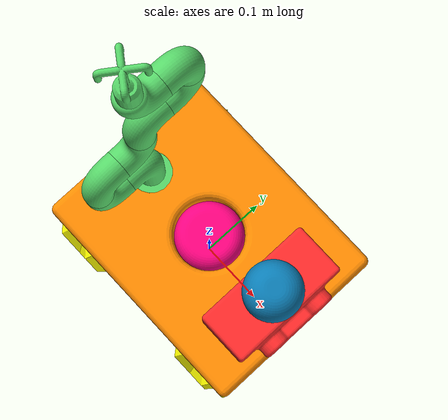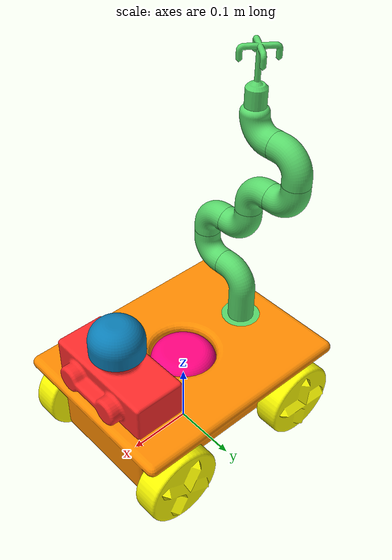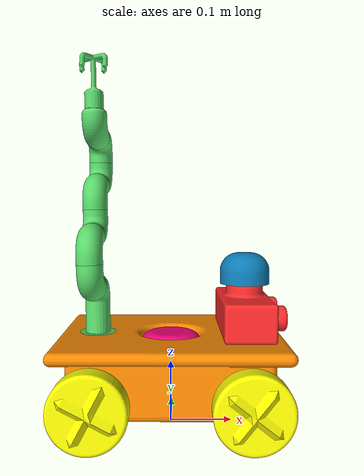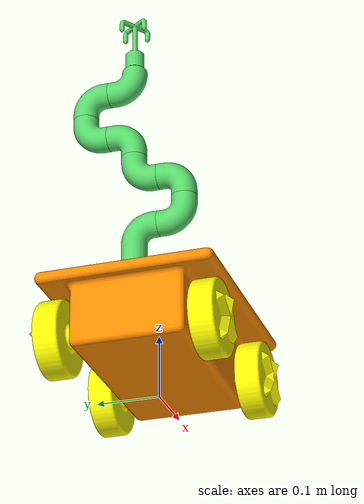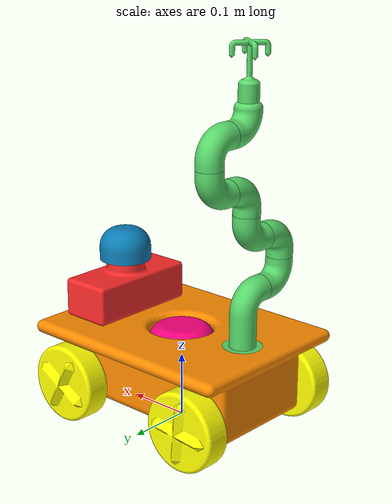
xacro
<?xml version="1.0"?>
<robot xmlns:xacro="http://www.ros.org/wiki/xacro" name="MRobot">
    <xacro:arg name="initial_positions_file" default="initial_positions.yaml" />

    <!-- Import MRobot urdf file -->
    <xacro:include filename="$(find mrobot_description)/urdf/MRobot.urdf" />

    <!-- Import control_xacro -->
    <xacro:include filename="MRobot.ros2_control.xacro" />

    <xacro:MRobot_ros2_control name="FakeSystem" initial_positions_file="$(arg initial_positions_file)"/>

</robot>

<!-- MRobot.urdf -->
<robot
  name="MRobot">
  <link
    name="base_link">
    <inertial>
      <origin
        xyz="-2.7756E-17 2.7756E-17 0.093261"
        rpy="0 0 0" />
      <mass
        value="7.1556" />
      <inertia
        ixx="0.036675"
        ixy="6.4322E-18"
        ixz="-8.9158E-18"
        iyy="0.076383"
        iyz="2.5114E-19"
        izz="0.094459" />
    </inertial>
    <visual>
      <origin
        xyz="0 0 0"
        rpy="0 0 0" />
      <geometry>
        <mesh
          filename="package://mrobot_description/meshes/base_link.STL" />
      </geometry>
      <material
        name="">
        <color
          rgba="1 0.54902 0 1" />
      </material>
    </visual>
    <collision>
      <origin
        xyz="0 0 0"
        rpy="0 0 0" />
      <geometry>
        <mesh
          filename="package://mrobot_description/meshes/base_link.STL" />
      </geometry>
    </collision>
  </link>
  <link
    name="LFW_Link">
    <inertial>
      <origin
        xyz="2.3243E-06 -0.020721 -6.7841E-07"
        rpy="0 0 0" />
      <mass
        value="0.48673" />
      <inertia
        ixx="0.00050184"
        ixy="-3.1361E-08"
        ixz="2.2406E-09"
        iyy="0.00081481"
        iyz="9.1535E-09"
        izz="0.00050184" />
    </inertial>
    <visual>
      <origin
        xyz="0 0 0"
        rpy="0 0 0" />
      <geometry>
        <mesh
          filename="package://mrobot_description/meshes/LFW_Link.STL" />
      </geometry>
      <material
        name="">
        <color
          rgba="1 1 0 1" />
      </material>
    </visual>
    <collision>
      <origin
        xyz="0 0 0"
        rpy="0 0 0" />
      <geometry>
        <mesh
          filename="package://mrobot_description/meshes/LFW_Link.STL" />
      </geometry>
    </collision>
  </link>
  <joint
    name="LFW_Joint"
    type="continuous">
    <origin
      xyz="0.12 0.14 0.0599"
      rpy="0 0 0" />
    <parent
      link="base_link" />
    <child
      link="LFW_Link" />
    <axis
      xyz="0 1 0" />
  </joint>
  <link
    name="LBW_Link">
    <inertial>
      <origin
        xyz="1.8572E-06 -0.020721 -1.5535E-06"
        rpy="0 0 0" />
      <mass
        value="0.48673" />
      <inertia
        ixx="0.00050184"
        ixy="-2.5058E-08"
        ixz="4.0997E-09"
        iyy="0.00081481"
        iyz="2.0962E-08"
        izz="0.00050184" />
    </inertial>
    <visual>
      <origin
        xyz="0 0 0"
        rpy="0 0 0" />
      <geometry>
        <mesh
          filename="package://mrobot_description/meshes/LBW_Link.STL" />
      </geometry>
      <material
        name="">
        <color
          rgba="1 1 0 1" />
      </material>
    </visual>
    <collision>
      <origin
        xyz="0 0 0"
        rpy="0 0 0" />
      <geometry>
        <mesh
          filename="package://mrobot_description/meshes/LBW_Link.STL" />
      </geometry>
    </collision>
  </link>
  <joint
    name="LBW_Joint"
    type="continuous">
    <origin
      xyz="-0.12 0.14 0.0599"
      rpy="0 0 0" />
    <parent
      link="base_link" />
    <child
      link="LBW_Link" />
    <axis
      xyz="0 1 0" />
  </joint>
  <link
    name="RFW_Link">
    <inertial>
      <origin
        xyz="-2.4027E-06 0.020721 -2.9925E-07"
        rpy="0 0 0" />
      <mass
        value="0.48673" />
      <inertia
        ixx="0.00050184"
        ixy="-3.2419E-08"
        ixz="-1.0217E-09"
        iyy="0.00081481"
        iyz="-4.0377E-09"
        izz="0.00050185" />
    </inertial>
    <visual>
      <origin
        xyz="0 0 0"
        rpy="0 0 0" />
      <geometry>
        <mesh
          filename="package://mrobot_description/meshes/RFW_Link.STL" />
      </geometry>
      <material
        name="">
        <color
          rgba="1 1 0 1" />
      </material>
    </visual>
    <collision>
      <origin
        xyz="0 0 0"
        rpy="0 0 0" />
      <geometry>
        <mesh
          filename="package://mrobot_description/meshes/RFW_Link.STL" />
      </geometry>
    </collision>
  </link>
  <joint
    name="RFW_Joint"
    type="continuous">
    <origin
      xyz="0.12 -0.14 0.0599"
      rpy="0 0 0" />
    <parent
      link="base_link" />
    <child
      link="RFW_Link" />
    <axis
      xyz="0 1 0" />
  </joint>
  <link
    name="RBW_Link">
    <inertial>
      <origin
        xyz="2.3148E-06 0.020721 7.1032E-07"
        rpy="0 0 0" />
      <mass
        value="0.48673" />
      <inertia
        ixx="0.00050184"
        ixy="3.1232E-08"
        ixz="-2.3363E-09"
        iyy="0.00081481"
        iyz="9.5841E-09"
        izz="0.00050184" />
    </inertial>
    <visual>
      <origin
        xyz="0 0 0"
        rpy="0 0 0" />
      <geometry>
        <mesh
          filename="package://mrobot_description/meshes/RBW_Link.STL" />
      </geometry>
      <material
        name="">
        <color
          rgba="1 1 0 1" />
      </material>
    </visual>
    <collision>
      <origin
        xyz="0 0 0"
        rpy="0 0 0" />
      <geometry>
        <mesh
          filename="package://mrobot_description/meshes/RBW_Link.STL" />
      </geometry>
    </collision>
  </link>
  <joint
    name="RBW_Joint"
    type="continuous">
    <origin
      xyz="-0.12 -0.14 0.0599000145774858"
      rpy="0 0 0" />
    <parent
      link="base_link" />
    <child
      link="RBW_Link" />
    <axis
      xyz="0 1 0" />
  </joint>
  <link
    name="IMU_Link">
    <inertial>
      <origin
        xyz="-2.7756E-17 0 0.025"
        rpy="0 0 0" />
      <mass
        value="0.34358" />
      <inertia
        ixx="0.00025428"
        ixy="5.1726E-22"
        ixz="-6.1904E-21"
        iyy="0.00025428"
        iyz="-1.6674E-37"
        izz="0.00038703" />
    </inertial>
    <visual>
      <origin
        xyz="0 0 0"
        rpy="0 0 0" />
      <geometry>
        <mesh
          filename="package://mrobot_description/meshes/IMU_Link.STL" />
      </geometry>
      <material
        name="">
        <color
          rgba="1 0 0.50196 1" />
      </material>
    </visual>
    <collision>
      <origin
        xyz="0 0 0"
        rpy="0 0 0" />
      <geometry>
        <mesh
          filename="package://mrobot_description/meshes/IMU_Link.STL" />
      </geometry>
    </collision>
  </link>
  <joint
    name="IMU_Joint"
    type="fixed">
    <origin
      xyz="0 0 0.0999"
      rpy="0 0 0" />
    <parent
      link="base_link" />
    <child
      link="IMU_Link" />
    <axis
      xyz="0 0 1" />
  </joint>
  <link
    name="Camera_Link">
    <inertial>
      <origin
        xyz="-0.05702 5.5511E-17 -4.6026E-05"
        rpy="0 0 0" />
      <mass
        value="1.0337" />
      <inertia
        ixx="0.0028575"
        ixy="-6.1857E-20"
        ixz="-1.4178E-07"
        iyy="0.0010679"
        iyz="1.6895E-19"
        izz="0.0030374" />
    </inertial>
    <visual>
      <origin
        xyz="0 0 0"
        rpy="0 0 0" />
      <geometry>
        <mesh
          filename="package://mrobot_description/meshes/Camera_Link.STL" />
      </geometry>
      <material
        name="">
        <color
          rgba="1 0.16863 0.16863 1" />
      </material>
    </visual>
    <collision>
      <origin
        xyz="0 0 0"
        rpy="0 0 0" />
      <geometry>
        <mesh
          filename="package://mrobot_description/meshes/Camera_Link.STL" />
      </geometry>
    </collision>
  </link>
  <joint
    name="Camera_Joint"
    type="fixed">
    <origin
      xyz="0.18 0 0.1799"
      rpy="0 0 0" />
    <parent
      link="base_link" />
    <child
      link="Camera_Link" />
    <axis
      xyz="0 0 0" />
  </joint>
  <link
    name="Laser_Link">
    <inertial>
      <origin
        xyz="0 0 -0.028399"
        rpy="0 0 0" />
      <mass
        value="0.21092" />
      <inertia
        ixx="0.00011218"
        ixy="1.9163E-23"
        ixz="-1.8966E-21"
        iyy="0.00011218"
        iyz="2.7996E-21"
        izz="0.00015264" />
    </inertial>
    <visual>
      <origin
        xyz="0 0 0"
        rpy="0 0 0" />
      <geometry>
        <mesh
          filename="package://mrobot_description/meshes/Laser_Link.STL" />
      </geometry>
      <material
        name="">
        <color
          rgba="0.039216 0.4902 0.7098 1" />
      </material>
    </visual>
    <collision>
      <origin
        xyz="0 0 0"
        rpy="0 0 0" />
      <geometry>
        <mesh
          filename="package://mrobot_description/meshes/Laser_Link.STL" />
      </geometry>
    </collision>
  </link>
  <joint
    name="Laser_Joint"
    type="fixed">
    <origin
      xyz="0.12 0 0.2799"
      rpy="0 0 0" />
    <parent
      link="base_link" />
    <child
      link="Laser_Link" />
    <axis
      xyz="0 0 0" />
  </joint>
  <link
    name="Arm1_Link">
    <inertial>
      <origin
        xyz="1.0996E-05 -0.0041714 0.050968"
        rpy="0 0 0" />
      <mass
        value="0.18488" />
      <inertia
        ixx="0.00027199"
        ixy="3.3806E-08"
        ixz="-9.832E-08"
        iyy="0.00025917"
        iyz="3.7297E-05"
        izz="6.488E-05" />
    </inertial>
    <visual>
      <origin
        xyz="0 0 0"
        rpy="0 0 0" />
      <geometry>
        <mesh
          filename="package://mrobot_description/meshes/Arm1_Link.STL" />
      </geometry>
      <material
        name="">
        <color
          rgba="0.34118 0.83922 0.41176 1" />
      </material>
    </visual>
    <collision>
      <origin
        xyz="0 0 0"
        rpy="0 0 0" />
      <geometry>
        <mesh
          filename="package://mrobot_description/meshes/Arm1_Link.STL" />
      </geometry>
    </collision>
  </link>
  <joint
    name="Arm1_Joint"
    type="continuous">
    <origin
      xyz="-0.12 0 0.1299"
      rpy="0 0 0" />
    <parent
      link="base_link" />
    <child
      link="Arm1_Link" />
    <axis
      xyz="0 0 1" />
  </joint>
  <link
    name="Arm2_Link">
    <inertial>
      <origin
        xyz="-0.00011471 -0.044898 0.0091401"
        rpy="0 0 0" />
      <mass
        value="0.08435" />
      <inertia
        ixx="4.4126E-05"
        ixy="-2.3556E-07"
        ixz="1.9975E-07"
        iyy="2.5859E-05"
        iyz="1.1127E-05"
        izz="3.5146E-05" />
    </inertial>
    <visual>
      <origin
        xyz="0 0 0"
        rpy="0 0 0" />
      <geometry>
        <mesh
          filename="package://mrobot_description/meshes/Arm2_Link.STL" />
      </geometry>
      <material
        name="">
        <color
          rgba="0.34118 0.83922 0.41176 1" />
      </material>
    </visual>
    <collision>
      <origin
        xyz="0 0 0"
        rpy="0 0 0" />
      <geometry>
        <mesh
          filename="package://mrobot_description/meshes/Arm2_Link.STL" />
      </geometry>
    </collision>
  </link>
  <joint
    name="Arm2_Joint"
    type="continuous">
    <origin
      xyz="5.2723E-05 -0.02 0.1"
      rpy="0 0 0" />
    <parent
      link="Arm1_Link" />
    <child
      link="Arm2_Link" />
    <axis
      xyz="0 1 0" />
  </joint>
  <link
    name="Arm3_Link">
    <inertial>
      <origin
        xyz="-0.0011642 0.00914 0.044883"
        rpy="0 0 0" />
      <mass
        value="0.08435" />
      <inertia
        ixx="4.4117E-05"
        ixy="3.0307E-07"
        ixz="4.8958E-07"
        iyy="3.5142E-05"
        iyz="-1.1125E-05"
        izz="2.5871E-05" />
    </inertial>
    <visual>
      <origin
        xyz="0 0 0"
        rpy="0 0 0" />
      <geometry>
        <mesh
          filename="package://mrobot_description/meshes/Arm3_Link.STL" />
      </geometry>
      <material
        name="">
        <color
          rgba="0.34118 0.83922 0.41176 1" />
      </material>
    </visual>
    <collision>
      <origin
        xyz="0 0 0"
        rpy="0 0 0" />
      <geometry>
        <mesh
          filename="package://mrobot_description/meshes/Arm3_Link.STL" />
      </geometry>
    </collision>
  </link>
  <joint
    name="Arm3_Joint"
    type="continuous">
    <origin
      xyz="-0.00035165 -0.060001 0.019994"
      rpy="0 0 0" />
    <parent
      link="Arm2_Link" />
    <child
      link="Arm3_Link" />
    <axis
      xyz="0 0 1" />
  </joint>
  <link
    name="Arm4_Link">
    <inertial>
      <origin
        xyz="-0.00029434 0.044897 0.0091415"
        rpy="0 0 0" />
      <mass
        value="0.08435" />
      <inertia
        ixx="4.4125E-05"
        ixy="2.7981E-07"
        ixz="2.1815E-07"
        iyy="2.5861E-05"
        iyz="-1.1127E-05"
        izz="3.5144E-05" />
    </inertial>
    <visual>
      <origin
        xyz="0 0 0"
        rpy="0 0 0" />
      <geometry>
        <mesh
          filename="package://mrobot_description/meshes/Arm4_Link.STL" />
      </geometry>
      <material
        name="">
        <color
          rgba="0.34118 0.83922 0.41176 1" />
      </material>
    </visual>
    <collision>
      <origin
        xyz="0 0 0"
        rpy="0 0 0" />
      <geometry>
        <mesh
          filename="package://mrobot_description/meshes/Arm4_Link.STL" />
      </geometry>
    </collision>
  </link>
  <joint
    name="Arm4_Joint"
    type="continuous">
    <origin
      xyz="-0.0015726 0.019996 0.059981"
      rpy="0 0 0" />
    <parent
      link="Arm3_Link" />
    <child
      link="Arm4_Link" />
    <axis
      xyz="0 1 0" />
  </joint>
  <link
    name="Arm5_Link">
    <inertial>
      <origin
        xyz="-0.00096691 0.0091404 0.044888"
        rpy="0 0 0" />
      <mass
        value="0.08435" />
      <inertia
        ixx="4.4122E-05"
        ixy="2.3751E-07"
        ixz="3.9101E-07"
        iyy="3.5142E-05"
        iyz="-1.1127E-05"
        izz="2.5867E-05" />
    </inertial>
    <visual>
      <origin
        xyz="0 0 0"
        rpy="0 0 0" />
      <geometry>
        <mesh
          filename="package://mrobot_description/meshes/Arm5_Link.STL" />
      </geometry>
      <material
        name="">
        <color
          rgba="0.34118 0.83922 0.41176 1" />
      </material>
    </visual>
    <collision>
      <origin
        xyz="0 0 0"
        rpy="0 0 0" />
      <geometry>
        <mesh
          filename="package://mrobot_description/meshes/Arm5_Link.STL" />
      </geometry>
    </collision>
  </link>
  <joint
    name="Arm5_Joint"
    type="continuous">
    <origin
      xyz="-0.00056143 0.059999 0.019996"
      rpy="0 0 0" />
    <parent
      link="Arm4_Link" />
    <child
      link="Arm5_Link" />
    <axis
      xyz="0 0 1" />
  </joint>
  <link
    name="Arm6_Link">
    <inertial>
      <origin
        xyz="8.7382E-05 0.044897 0.0091457"
        rpy="0 0 0" />
      <mass
        value="0.08435" />
      <inertia
        ixx="4.413E-05"
        ixy="-9.4656E-08"
        ixz="-7.5296E-08"
        iyy="2.5861E-05"
        iyz="-1.113E-05"
        izz="3.514E-05" />
    </inertial>
    <visual>
      <origin
        xyz="0 0 0"
        rpy="0 0 0" />
      <geometry>
        <mesh
          filename="package://mrobot_description/meshes/Arm6_Link.STL" />
      </geometry>
      <material
        name="">
        <color
          rgba="0.34118 0.83922 0.41176 1" />
      </material>
    </visual>
    <collision>
      <origin
        xyz="0 0 0"
        rpy="0 0 0" />
      <geometry>
        <mesh
          filename="package://mrobot_description/meshes/Arm6_Link.STL" />
      </geometry>
    </collision>
  </link>
  <joint
    name="Arm6_Joint"
    type="continuous">
    <origin
      xyz="-0.0012896 0.019996 0.059987"
      rpy="0 0 0" />
    <parent
      link="Arm5_Link" />
    <child
      link="Arm6_Link" />
    <axis
      xyz="0 1 0" />
  </joint>
  <link
    name="Arm7_Link">
    <inertial>
      <origin
        xyz="0.00043811 -0.0091458 0.044895"
        rpy="0 0 0" />
      <mass
        value="0.08435" />
      <inertia
        ixx="4.4127E-05"
        ixy="1.6742E-07"
        ixz="-2.4306E-07"
        iyy="3.514E-05"
        iyz="1.1129E-05"
        izz="2.5864E-05" />
    </inertial>
    <visual>
      <origin
        xyz="0 0 0"
        rpy="0 0 0" />
      <geometry>
        <mesh
          filename="package://mrobot_description/meshes/Arm7_Link.STL" />
      </geometry>
      <material
        name="">
        <color
          rgba="0.34118 0.83922 0.41176 1" />
      </material>
    </visual>
    <collision>
      <origin
        xyz="0 0 0"
        rpy="0 0 0" />
      <geometry>
        <mesh
          filename="package://mrobot_description/meshes/Arm7_Link.STL" />
      </geometry>
    </collision>
  </link>
  <joint
    name="Arm7_Joint"
    type="continuous">
    <origin
      xyz="0.00017885 0.059999 0.020003"
      rpy="0 0 0" />
    <parent
      link="Arm6_Link" />
    <child
      link="Arm7_Link" />
    <axis
      xyz="0 0 1" />
  </joint>
  <link
    name="Arm8_Link">
    <inertial>
      <origin
        xyz="0.00030661 -0.044611 0.0085859"
        rpy="0 0 0" />
      <mass
        value="0.082779" />
      <inertia
        ixx="4.2149E-05"
        ixy="5.5172E-08"
        ixz="-1.4313E-08"
        iyy="2.424E-05"
        iyz="1.0427E-05"
        izz="3.4247E-05" />
    </inertial>
    <visual>
      <origin
        xyz="0 0 0"
        rpy="0 0 0" />
      <geometry>
        <mesh
          filename="package://mrobot_description/meshes/Arm8_Link.STL" />
      </geometry>
      <material
        name="">
        <color
          rgba="0.34118 0.83922 0.41176 1" />
      </material>
    </visual>
    <collision>
      <origin
        xyz="0 0 0"
        rpy="0 0 0" />
      <geometry>
        <mesh
          filename="package://mrobot_description/meshes/Arm8_Link.STL" />
      </geometry>
    </collision>
  </link>
  <joint
    name="Arm8_Joint"
    type="continuous">
    <origin
      xyz="0.00065353 -0.020003 0.059995"
      rpy="0 0 0" />
    <parent
      link="Arm7_Link" />
    <child
      link="Arm8_Link" />
    <axis
      xyz="0 1 0" />
  </joint>
  <link
    name="Arm9_Link">
    <inertial>
      <origin
        xyz="-0.00044489 -1.0208E-05 0.045738"
        rpy="0 0 0" />
      <mass
        value="0.037119" />
      <inertia
        ixx="3.7094E-05"
        ixy="-6.8342E-11"
        ixz="3.062E-07"
        iyy="3.7097E-05"
        iyz="7.0261E-09"
        izz="5.6183E-06" />
    </inertial>
    <visual>
      <origin
        xyz="0 0 0"
        rpy="0 0 0" />
      <geometry>
        <mesh
          filename="package://mrobot_description/meshes/Arm9_Link.STL" />
      </geometry>
      <material
        name="">
        <color
          rgba="0.34118 0.83922 0.41176 1" />
      </material>
    </visual>
    <collision>
      <origin
        xyz="0 0 0"
        rpy="0 0 0" />
      <geometry>
        <mesh
          filename="package://mrobot_description/meshes/Arm9_Link.STL" />
      </geometry>
    </collision>
  </link>
  <joint
    name="Arm9_Joint"
    type="continuous">
    <origin
      xyz="0.00033025 -0.060002 0.019991"
      rpy="0 0 0" />
    <parent
      link="Arm8_Link" />
    <child
      link="Arm9_Link" />
    <axis
      xyz="0 0 1" />
  </joint>
</robot>
